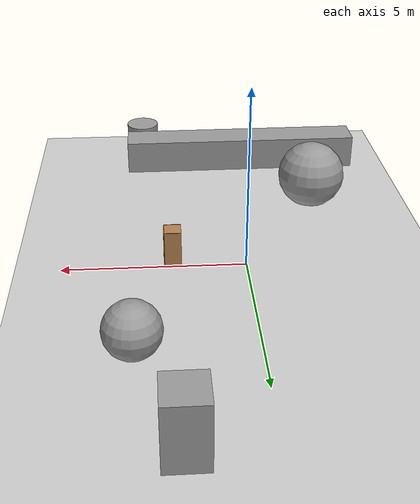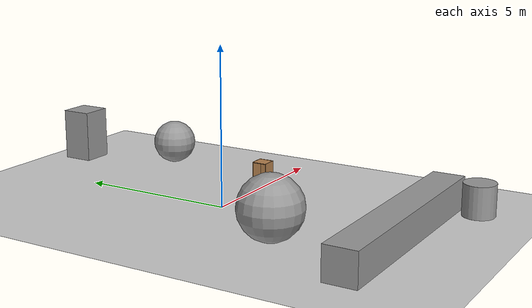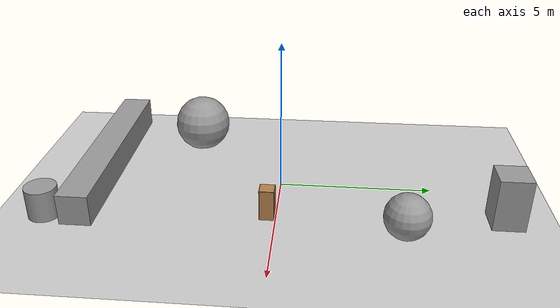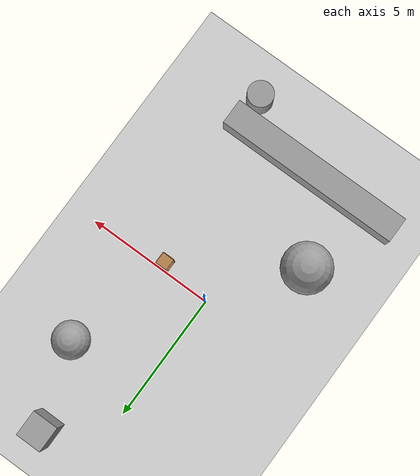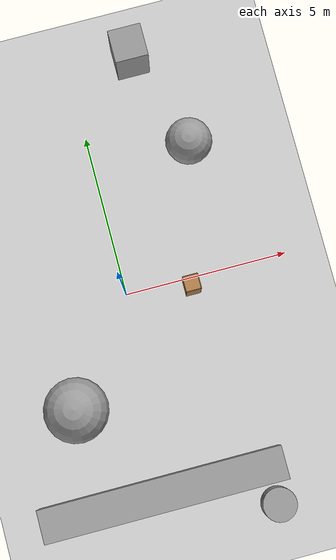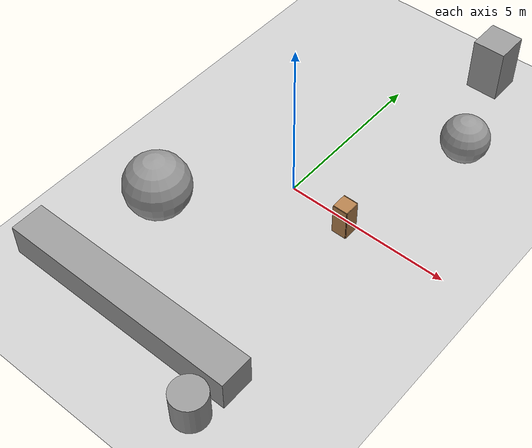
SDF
<sdf version="1.7">
 <world name="my_cafe">
  <light name="sun" type="directional">
   <pose>0 0 10 0 -0 0</pose>
   <diffuse>0.8 0.8 0.8 1</diffuse>
   <specular>0.2 0.2 0.2 1</specular>
   <attenuation>
    <range>1000</range>
    <constant>0.9</constant>
    <linear>0.01</linear>
    <quadratic>0.001</quadratic>
   </attenuation>
   <direction>-0.5 0.1 -0.9</direction>
   <spot><inner_angle>0</inner_angle><outer_angle>0</outer_angle><falloff>0</falloff></spot>
  </light>
  <model name="ground_plane">
   <static>1</static>
   <link name="link">
    <collision name="collision">
     <geometry><plane><normal>0 0 1</normal><size>100 100</size></plane></geometry>
     <surface>
      <contact><collide_bitmask>65535</collide_bitmask></contact>
      <friction><ode><mu>100</mu><mu2>50</mu2></ode></friction>
     </surface>
    </collision>
    <visual name="visual">
     <cast_shadows>0</cast_shadows>
     <geometry><plane><normal>0 0 1</normal><size>100 100</size></plane></geometry>
     <material>
      <script><uri>file://media/materials/scripts/gazebo.material</uri><name>Gazebo/Grey</name></script>
     </material>
    </visual>
   </link>
  </model>
  <gravity>0 0 -9.8</gravity>
  <magnetic_field>6e-06 2.3e-05 -4.2e-05</magnetic_field>
  <atmosphere type="adiabatic"/>
  <physics type="ode">
   <max_step_size>0.001</max_step_size>
   <real_time_factor>1</real_time_factor>
   <real_time_update_rate>1000</real_time_update_rate>
  </physics>
  <scene><ambient>0.4 0.4 0.4 1</ambient><background>0.7 0.7 0.7 1</background><shadows>1</shadows></scene>
  <spherical_coordinates>
   <surface_model>EARTH_WGS84</surface_model>
   <latitude_deg>0</latitude_deg>
   <longitude_deg>0</longitude_deg>
   <elevation>0</elevation>
   <heading_deg>0</heading_deg>
  </spherical_coordinates>
  <model name="unit_cylinder">
   <pose>2.75875 -7.14792 0.68979 0 -0 -0.015667</pose>
   <link name="link">
    <inertial>
     <mass>1</mass>
     <inertia><ixx>0.145833</ixx><ixy>0</ixy><ixz>0</ixz><iyy>0.145833</iyy><iyz>0</iyz><izz>0.125</izz></inertia>
    </inertial>
    <collision name="collision">
     <geometry><cylinder><radius>0.5</radius><length>1</length></cylinder></geometry>
    </collision>
    <visual name="visual">
     <geometry><cylinder><radius>0.5</radius><length>1</length></cylinder></geometry>
     <material>
      <script><name>Gazebo/Grey</name><uri>file://media/materials/scripts/gazebo.material</uri></script>
     </material>
    </visual>
   </link>
  </model>
  <model name="unit_box">
   <pose>-0.408001 -6.01793 0.678505 -3e-06 0.003102 -0.000844</pose>
   <link name="link">
    <inertial>
     <mass>1</mass>
     <inertia>
      <ixx>0.166667</ixx>
      <ixy>0</ixy>
      <ixz>0</ixz>
      <iyy>0.166667</iyy>
      <iyz>0</iyz>
      <izz>0.166667</izz>
     </inertia>
    </inertial>
    <collision name="collision"><geometry><box><size>7.28869 1 1</size></box></geometry></collision>
    <visual name="visual">
     <geometry><box><size>7.28869 1 1</size></box></geometry>
     <material>
      <script><name>Gazebo/Grey</name><uri>file://media/materials/scripts/gazebo.material</uri></script>
     </material>
    </visual>
   </link>
  </model>
  <model name="cabinet">
   <static>1</static>
   <link name="cabinet_bottom_plate">
    <inertial>
     <pose>0 0 -1 0 -0 0</pose>
     <inertia><ixx>2.05</ixx><ixy>0</ixy><ixz>0</ixz><iyy>2.05</iyy><iyz>0</iyz><izz>2.05</izz></inertia>
     <mass>25</mass>
    </inertial>
    <collision name="cabinet_bottom_plate_geom">
     <pose>0 0 0.01 0 -0 0</pose>
     <geometry><box><size>0.45 0.45 0.02</size></box></geometry>
    </collision>
    <visual name="cabinet_bottom_plate_geom_visual">
     <pose>0 0 0.01 0 -0 0</pose>
     <geometry><box><size>0.45 0.45 0.02</size></box></geometry>
     <material>
      <script><uri>file://media/materials/scripts/gazebo.material</uri><name>Gazebo/Wood</name></script>
     </material>
    </visual>
    <collision name="cabinet_bottom_plate_geom_cabinet_back_plate">
     <pose>0.235 0 0.51 0 -0 0</pose>
     <geometry><box><size>0.02 0.45 1.02</size></box></geometry>
    </collision>
    <visual name="cabinet_bottom_plate_geom_cabinet_back_plate_visual">
     <pose>0.235 0 0.51 0 -0 0</pose>
     <geometry><box><size>0.02 0.45 1.02</size></box></geometry>
     <material>
      <script><uri>file://media/materials/scripts/gazebo.material</uri><name>Gazebo/Wood</name></script>
     </material>
    </visual>
    <collision name="cabinet_bottom_plate_geom_cabinet_left_plate">
     <pose>0 0.235 0.51 0 -0 0</pose>
     <geometry><box><size>0.45 0.02 1.02</size></box></geometry>
    </collision>
    <visual name="cabinet_bottom_plate_geom_cabinet_left_plate_visual">
     <pose>0 0.235 0.51 0 -0 0</pose>
     <geometry><box><size>0.45 0.02 1.02</size></box></geometry>
     <material>
      <script><uri>file://media/materials/scripts/gazebo.material</uri><name>Gazebo/Wood</name></script>
     </material>
    </visual>
    <collision name="cabinet_bottom_plate_geom_cabinet_middle_plate">
     <pose>0 0 0.51 0 -0 0</pose>
     <geometry><box><size>0.45 0.45 0.02</size></box></geometry>
    </collision>
    <visual name="cabinet_bottom_plate_geom_cabinet_middle_plate_visual">
     <pose>0 0 0.51 0 -0 0</pose>
     <geometry><box><size>0.45 0.45 0.02</size></box></geometry>
     <material>
      <script><uri>file://media/materials/scripts/gazebo.material</uri><name>Gazebo/Wood</name></script>
     </material>
    </visual>
    <collision name="cabinet_bottom_plate_geom_cabinet_right_plate">
     <pose>0 -0.235 0.51 0 -0 0</pose>
     <geometry><box><size>0.45 0.02 1.02</size></box></geometry>
    </collision>
    <visual name="cabinet_bottom_plate_geom_cabinet_right_plate_visual">
     <pose>0 -0.235 0.51 0 -0 0</pose>
     <geometry><box><size>0.45 0.02 1.02</size></box></geometry>
     <material>
      <script><uri>file://media/materials/scripts/gazebo.material</uri><name>Gazebo/Wood</name></script>
     </material>
    </visual>
    <collision name="cabinet_bottom_plate_geom_cabinet_top_plate">
     <pose>0 0 1.01 0 -0 0</pose>
     <geometry><box><size>0.45 0.45 0.02</size></box></geometry>
    </collision>
    <visual name="cabinet_bottom_plate_geom_cabinet_top_plate_visual">
     <pose>0 0 1.01 0 -0 0</pose>
     <geometry><box><size>0.45 0.45 0.02</size></box></geometry>
     <material>
      <script><uri>file://media/materials/scripts/gazebo.material</uri><name>Gazebo/Wood</name></script>
     </material>
    </visual>
   </link>
   <pose>1.9721 -0.273523 0 0 -0 0</pose>
  </model>
  <model name="unit_sphere">
   <pose>-2.23643 -3.04039 1.15208 0 -0 0</pose>
   <link name="link">
    <inertial>
     <mass>1</mass>
     <inertia><ixx>0.1</ixx><ixy>0</ixy><ixz>0</ixz><iyy>0.1</iyy><iyz>0</iyz><izz>0.1</izz></inertia>
    </inertial>
    <collision name="collision"><geometry><sphere><radius>0.962275</radius></sphere></geometry></collision>
    <visual name="visual">
     <geometry><sphere><radius>0.962275</radius></sphere></geometry>
     <material>
      <script><name>Gazebo/Grey</name><uri>file://media/materials/scripts/gazebo.material</uri></script>
     </material>
    </visual>
   </link>
  </model>
  <model name="unit_sphere_0">
   <pose>3.00034 3.91836 0.897548 0 -0 0</pose>
   <link name="link">
    <inertial>
     <mass>1</mass>
     <inertia><ixx>0.1</ixx><ixy>0</ixy><ixz>0</ixz><iyy>0.1</iyy><iyz>0</iyz><izz>0.1</izz></inertia>
    </inertial>
    <collision name="collision"><geometry><sphere><radius>0.707745</radius></sphere></geometry></collision>
    <visual name="visual">
     <geometry><sphere><radius>0.707745</radius></sphere></geometry>
     <material>
      <script><name>Gazebo/Grey</name><uri>file://media/materials/scripts/gazebo.material</uri></script>
     </material>
    </visual>
   </link>
  </model>
  <model name="unit_box_0">
   <pose>1.95178 7.0151 1.03624 -0 1e-06 0.000277</pose>
   <link name="link">
    <inertial>
     <mass>1</mass>
     <inertia>
      <ixx>0.166667</ixx>
      <ixy>0</ixy>
      <ixz>0</ixz>
      <iyy>0.166667</iyy>
      <iyz>0</iyz>
      <izz>0.166667</izz>
     </inertia>
    </inertial>
    <collision name="collision"><geometry><box><size>1 1 1.69287</size></box></geometry></collision>
    <visual name="visual">
     <geometry><box><size>1 1 1.69287</size></box></geometry>
     <material>
      <script><name>Gazebo/Grey</name><uri>file://media/materials/scripts/gazebo.material</uri></script>
     </material>
    </visual>
   </link>
  </model>
 </world>
</sdf>
